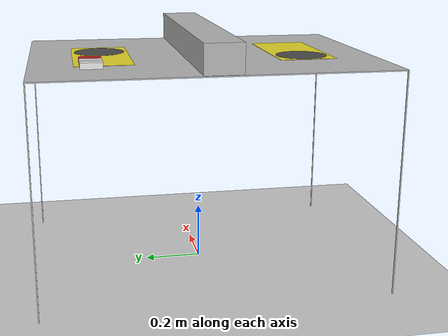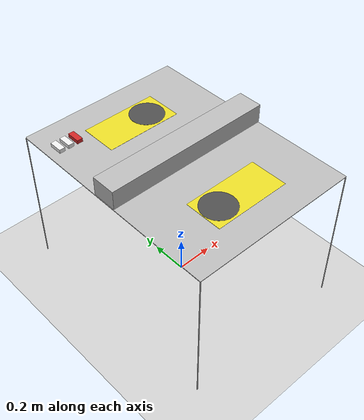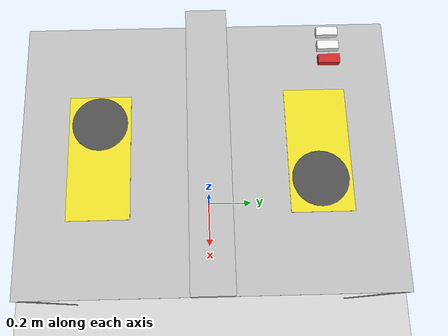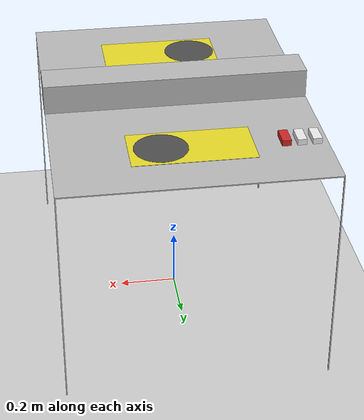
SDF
<sdf version="1.6">
 <world name="ur3_workspace">
  <gravity>0 0 -9.81</gravity>
  <physics name="default_physics" default="0" type="ode">
   <max_step_size>0.001</max_step_size>
   <real_time_factor>1</real_time_factor>
   <real_time_update_rate>1000</real_time_update_rate>
  </physics>
  <plugin name="ros_link_attacher_plugin" filename="libgazebo_ros_link_attacher.so"/>
  <scene><ambient>0.4 0.4 0.4 1</ambient><background>0.40 0.43 0.67 1</background><shadows>1</shadows></scene>
  <include><uri>model://sun</uri></include>
  <include><uri>model://ground_plane</uri></include>
  <model name="workspace">
   <static>true</static>
   <include><uri>model://workspace</uri><pose>-0.45 0.6 0 0 0 -1.573</pose></include>
  </model>
  <model name="base_cube">
   <static>true</static>
   <pose>0 0 0.78 0 0 0</pose>
   <link name="link">
    <pose>0 0 0.05 0 0 0</pose>
    <inertial>
     <mass>0.1</mass>
     <inertia>
      <ixx>2.3541666666666672e-05</ixx>
      <ixy>0</ixy>
      <ixz>0</ixz>
      <iyy>2.3541666666666672e-05</iyy>
      <iyz>0</iyz>
      <izz>2.3541666666666672e-05</izz>
     </inertia>
    </inertial>
    <visual name="visual"><geometry><box><size>0.9 0.13 0.1</size></box></geometry></visual>
    <collision name="collision"><geometry><box><size>0.9 0.13 0.1</size></box></geometry></collision>
   </link>
  </model>
  <model name="dish1">
   <static>true</static>
   <link name="link">
    <pose>0.0925 0.35 0.7801 0 0 0</pose>
    <collision name="collision">
     <geometry><cylinder><radius>0.09</radius><length>0.002</length></cylinder></geometry>
     <surface><friction><ode><mu>1.0</mu><mu2>1.0</mu2></ode></friction></surface>
    </collision>
    <visual name="visual">
     <geometry><cylinder><radius>0.09</radius><length>0.002</length></cylinder></geometry>
     <material>
      <script><uri>file://media/materials/scripts/gazebo.material</uri><name>Gazebo/DarkGrey</name></script>
     </material>
    </visual>
   </link>
  </model>
  <model name="dish2">
   <static>true</static>
   <link name="link">
    <pose>-0.1065 -0.35 0.7801 0 0 0</pose>
    <collision name="collision">
     <geometry><cylinder><radius>0.09</radius><length>0.002</length></cylinder></geometry>
     <surface><friction><ode><mu>1.0</mu><mu2>1.0</mu2></ode></friction></surface>
    </collision>
    <visual name="visual">
     <geometry><cylinder><radius>0.09</radius><length>0.002</length></cylinder></geometry>
     <material>
      <script><uri>file://media/materials/scripts/gazebo.material</uri><name>Gazebo/DarkGrey</name></script>
     </material>
    </visual>
   </link>
  </model>
  <model name="box1">
   <pose>-0.4 0.4 0.8 0 0 0</pose>
   <link name="link">
    <pose>0 0 0.015 0 0 0</pose>
    <inertial>
     <mass>0.050</mass>
     <inertia>
      <ixx>2.208333333e-05</ixx>
      <ixy>0</ixy>
      <ixz>0</ixz>
      <iyy>5.416666667e-06</iyy>
      <iyz>0</iyz>
      <izz>2.416666667e-05</izz>
     </inertia>
    </inertial>
    <collision name="collision">
     <geometry><box><size>0.03 0.07 0.02</size></box></geometry>
     <surface><friction><ode><mu>0.6</mu><mu2>0.6</mu2></ode></friction></surface>
    </collision>
    <visual name="visual">
     <geometry><box><size>0.03 0.07 0.02</size></box></geometry>
     <material>
      <script><uri>file://media/materials/scripts/gazebo.material</uri><name>Gazebo/White</name></script>
     </material>
    </visual>
   </link>
  </model>
  <model name="box2">
   <pose>-0.35 0.4 0.8 0 0 0</pose>
   <link name="link">
    <pose>0 0 0.015 0 0 0</pose>
    <inertial>
     <mass>0.050</mass>
     <inertia>
      <ixx>2.208333333e-05</ixx>
      <ixy>0</ixy>
      <ixz>0</ixz>
      <iyy>5.416666667e-06</iyy>
      <iyz>0</iyz>
      <izz>2.416666667e-05</izz>
     </inertia>
    </inertial>
    <collision name="collision">
     <geometry><box><size>0.03 0.07 0.02</size></box></geometry>
     <surface><friction><ode><mu>0.6</mu><mu2>0.6</mu2></ode></friction></surface>
    </collision>
    <visual name="visual">
     <geometry><box><size>0.03 0.07 0.02</size></box></geometry>
     <material>
      <script><uri>file://media/materials/scripts/gazebo.material</uri><name>Gazebo/White</name></script>
     </material>
    </visual>
   </link>
  </model>
  <model name="box3">
   <pose>-0.30 0.4 0.8 0 0 0</pose>
   <link name="link">
    <pose>0 0 0.015 0 0 0</pose>
    <inertial>
     <mass>0.05</mass>
     <inertia>
      <ixx>2.208333333e-05</ixx>
      <ixy>0</ixy>
      <ixz>0</ixz>
      <iyy>5.416666667e-06</iyy>
      <iyz>0</iyz>
      <izz>2.416666667e-05</izz>
     </inertia>
    </inertial>
    <collision name="collision">
     <geometry><box><size>0.03 0.07 0.02</size></box></geometry>
     <surface><friction><ode><mu>0.6</mu><mu2>0.6</mu2></ode></friction></surface>
    </collision>
    <visual name="visual">
     <geometry><box><size>0.03 0.07 0.02</size></box></geometry>
     <material>
      <script><uri>file://media/materials/scripts/gazebo.material</uri><name>Gazebo/Red</name></script>
     </material>
    </visual>
   </link>
  </model>
  <model name="motion_range_plane1">
   <static>true</static>
   <pose>-0.005 0.35 0.78005 0 0 0</pose>
   <link name="link">
    <visual name="visual">
     <geometry><box><size>0.41 0.2 0.001</size></box></geometry>
     <material>
      <script><uri>file://media/materials/scripts/gazebo.material</uri><name>Gazebo/Yellow</name></script>
     </material>
    </visual>
   </link>
  </model>
  <model name="motion_range_plane2">
   <static>true</static>
   <pose>0.005 -0.35 0.78005 0 0 0</pose>
   <link name="link">
    <visual name="visual">
     <geometry><box><size>0.41 0.2 0.001</size></box></geometry>
     <material>
      <script><uri>file://media/materials/scripts/gazebo.material</uri><name>Gazebo/Yellow</name></script>
     </material>
    </visual>
   </link>
  </model>
 </world>
</sdf>

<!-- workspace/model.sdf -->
<sdf version="1.6">
  <model name="measurement">
    <static>true</static>
    <link name="link">

      <collision name="collision">
        <geometry>
          <mesh>
            <scale>0.1 0.1 0.1</scale>
            <uri>model://workspace/meshes/workspace.stl</uri>
          </mesh>
        </geometry>
        <surface>
          <friction>
            <ode>
              <mu>1.2</mu>
              <mu2>1.2</mu2>
            </ode>
          </friction>
        </surface>
      </collision>

      <visual name="visual">
        <geometry>
          <mesh>
            <scale>0.1 0.1 0.1</scale>
            <uri>model://workspace/meshes/workspace.stl</uri>
          </mesh>
        </geometry>
      </visual>
    </link>
  </model>
</sdf>
